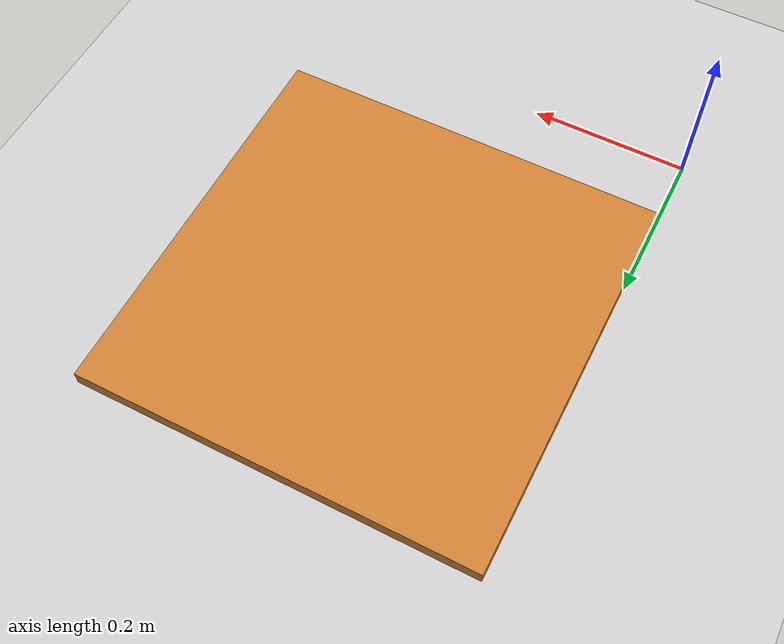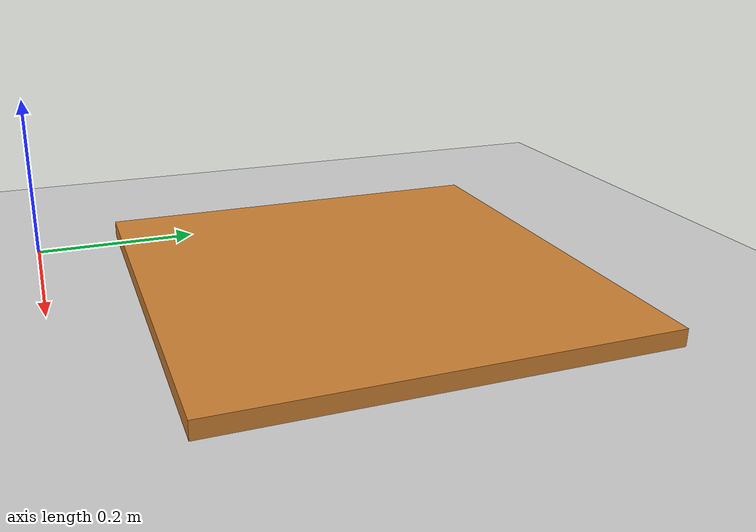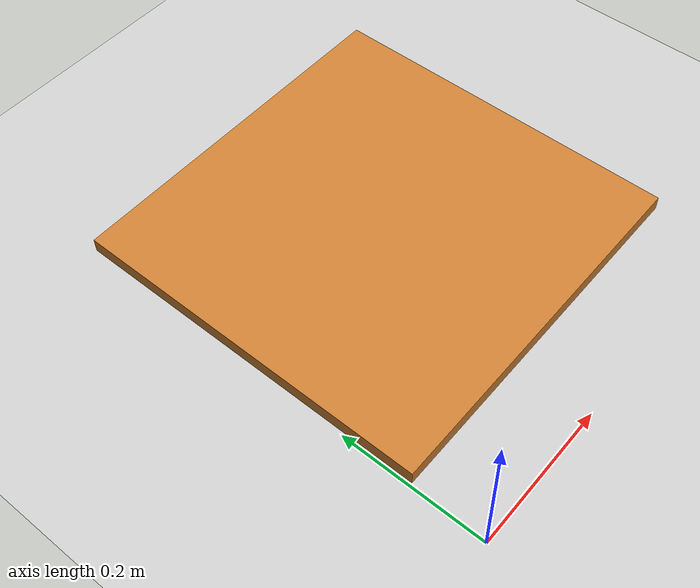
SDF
<?xml version="1.0" ?>
<sdf version="1.9">
  <world name="ur_world">
    <physics name="fast" type="ode">
      <gravity>0 0 -9.81</gravity>
      <max_step_size>0.002</max_step_size>
      <real_time_factor>1</real_time_factor>
    </physics>
    <plugin filename="ignition-gazebo-physics-system" name="ignition::gazebo::systems::Physics">
    </plugin>
    <plugin filename="ignition-gazebo-sensors-system"
      name="ignition::gazebo::systems::Sensors">
      <render_engine>ogre2</render_engine>
    </plugin>
    <plugin filename="ignition-gazebo-scene-broadcaster-system" name="ignition::gazebo::systems::SceneBroadcaster" />
    <plugin filename="ignition-gazebo-user-commands-system" name="ignition::gazebo::systems::UserCommands"/>
    <plugin filename="ignition-gazebo-contact-system" name="ignition::gazebo::systems::Contact"/>
    <plugin filename="ignition-gazebo-forcetorque-system" name="ignition::gazebo::systems::ForceTorque" />
    <plugin filename="libignition-gazebo-imu-system.so" name="ignition::gazebo::systems::Imu"/>
    <model name="ground_plane">
      <static>true</static>
      <link name="link">
        <collision name="collision">
          <geometry>
            <plane>
              <normal>0 0 1</normal>
              <size>100 100</size>
            </plane>
          </geometry>
        </collision>
        <visual name="visual">
          <geometry>
            <plane>
              <normal>0 0 1</normal>
              <size>100 100</size>
            </plane>
          </geometry>
          <material>
            <ambient>0.8 0.8 0.8 1</ambient>
            <diffuse>0.8 0.8 0.8 1</diffuse>
            <specular>0.8 0.8 0.8 1</specular>
            <emissive>0.8 0.8 0.8 1</emissive>
          </material>
        </visual>
      </link>
    </model>
    <light type="directional" name="sun">
      <cast_shadows>true</cast_shadows>
      <pose>0 0 10 0 0 0</pose>
      <diffuse>1 1 1 1</diffuse>
      <specular>0.5 0.5 0.5 1</specular>
      <attenuation>
        <range>1000</range>
        <constant>0.9</constant>
        <linear>0.01</linear>
        <quadratic>0.001</quadratic>
      </attenuation>
      <direction>-0.5 0.1 -0.9</direction>
    </light>

    <model name="soft_contact">
      <static>false</static>
      <pose>0.25 0.35 0.02   0 0 0</pose>
      <link name="soft_bodt_link">
        <soft_body>true</soft_body>
        <inertial>
          <mass>2.0</mass>
          <inertia>
            <ixx>0.166933</ixx>
            <iyy>0.166933</iyy>
            <izz>0.333333</izz>
          </inertia>
        </inertial>
        <visual name="box">
          <geometry>
            <box>
              <size>0.5 0.5 0.02</size>
            </box>
          </geometry>
          <material>
            <ambient>0.8 0.5 0.2 1</ambient>
            <diffuse>0.8 0.5 0.2 1</diffuse>
            <specular>0.8 0.5 0.2 1</specular>
          </material>
        </visual>
        <collision name="box">
          <geometry>
            <box>
              <size>0.5 0.5 0.02</size>
            </box>
          </geometry>
          <surface>
            <soft_contact>
              <dart>
                <bone_attachment>100</bone_attachment>
                <stiffness>100</stiffness>
                <damping>1</damping>
              </dart>
            </soft_contact>
          </surface>
        </collision>
        <collision name="sphere">
          <geometry>
            <sphere>
              <radius>1</radius>
            </sphere>
          </geometry>
        </collision>
      </link>
    </model>
  </world>
</sdf>
